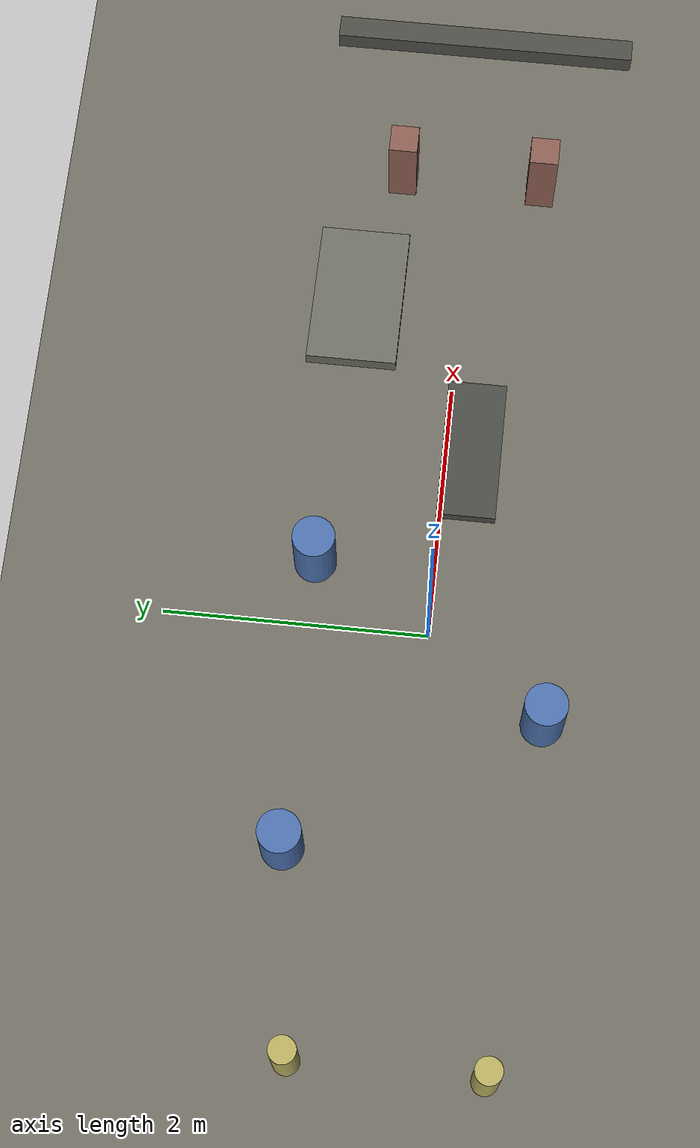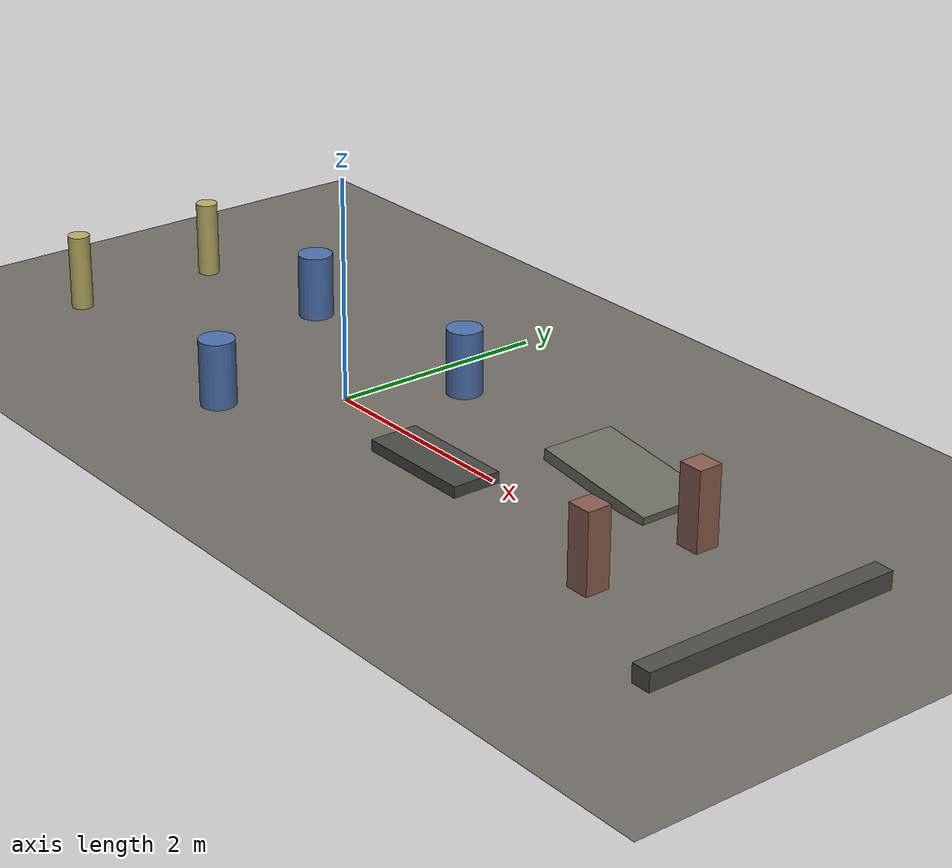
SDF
<?xml version="1.0"?>
<sdf version="1.9">
  <world name="brover_e5_obstacle_course">
    <plugin filename="gz-sim-physics-system" name="gz::sim::systems::Physics"/>
    <plugin filename="gz-sim-user-commands-system" name="gz::sim::systems::UserCommands"/>
    <plugin filename="gz-sim-scene-broadcaster-system" name="gz::sim::systems::SceneBroadcaster"/>
    <plugin filename="gz-sim-sensors-system" name="gz::sim::systems::Sensors">
      <render_engine>ogre2</render_engine>
    </plugin>

    <gravity>0 0 -9.81</gravity>
    <atmosphere type="adiabatic"/>
    <scene>
      <ambient>0.33 0.33 0.33 1</ambient>
      <background>0.66 0.70 0.74 1</background>
      <shadows>true</shadows>
    </scene>

    <light name="sun" type="directional">
      <cast_shadows>true</cast_shadows>
      <pose>0 0 10 0 0 0</pose>
      <diffuse>0.94 0.92 0.86 1</diffuse>
      <specular>0.10 0.10 0.10 1</specular>
      <direction>-0.35 0.35 -0.86</direction>
    </light>

    <model name="ground_plane">
      <static>true</static>
      <link name="link">
        <collision name="collision">
          <geometry>
            <plane>
              <normal>0 0 1</normal>
              <size>16 10</size>
            </plane>
          </geometry>
          <surface>
            <friction>
              <ode>
                <mu>1.2</mu>
                <mu2>1.2</mu2>
              </ode>
            </friction>
          </surface>
        </collision>
        <visual name="visual">
          <geometry>
            <plane>
              <normal>0 0 1</normal>
              <size>16 10</size>
            </plane>
          </geometry>
          <material>
            <ambient>0.44 0.43 0.39 1</ambient>
            <diffuse>0.44 0.43 0.39 1</diffuse>
            <specular>0.02 0.02 0.02 1</specular>
          </material>
        </visual>
      </link>
    </model>

    <model name="start_gate_left">
      <static>true</static>
      <pose>-3.2 0.7 0.35 0 0 0</pose>
      <link name="link">
        <collision name="collision"><geometry><cylinder><radius>0.10</radius><length>0.70</length></cylinder></geometry></collision>
        <visual name="visual">
          <geometry><cylinder><radius>0.10</radius><length>0.70</length></cylinder></geometry>
          <material><diffuse>0.72 0.68 0.38 1</diffuse></material>
        </visual>
      </link>
    </model>

    <model name="start_gate_right">
      <static>true</static>
      <pose>-3.2 -0.7 0.35 0 0 0</pose>
      <link name="link">
        <collision name="collision"><geometry><cylinder><radius>0.10</radius><length>0.70</length></cylinder></geometry></collision>
        <visual name="visual">
          <geometry><cylinder><radius>0.10</radius><length>0.70</length></cylinder></geometry>
          <material><diffuse>0.72 0.68 0.38 1</diffuse></material>
        </visual>
      </link>
    </model>

    <model name="slalom_post_1">
      <static>true</static>
      <pose>-1.7 0.9 0.30 0 0 0</pose>
      <link name="link">
        <collision name="collision"><geometry><cylinder><radius>0.16</radius><length>0.60</length></cylinder></geometry></collision>
        <visual name="visual">
          <geometry><cylinder><radius>0.16</radius><length>0.60</length></cylinder></geometry>
          <material><diffuse>0.30 0.44 0.68 1</diffuse></material>
        </visual>
      </link>
    </model>

    <model name="slalom_post_2">
      <static>true</static>
      <pose>-0.6 -0.9 0.30 0 0 0</pose>
      <link name="link">
        <collision name="collision"><geometry><cylinder><radius>0.16</radius><length>0.60</length></cylinder></geometry></collision>
        <visual name="visual">
          <geometry><cylinder><radius>0.16</radius><length>0.60</length></cylinder></geometry>
          <material><diffuse>0.30 0.44 0.68 1</diffuse></material>
        </visual>
      </link>
    </model>

    <model name="slalom_post_3">
      <static>true</static>
      <pose>0.5 0.9 0.30 0 0 0</pose>
      <link name="link">
        <collision name="collision"><geometry><cylinder><radius>0.16</radius><length>0.60</length></cylinder></geometry></collision>
        <visual name="visual">
          <geometry><cylinder><radius>0.16</radius><length>0.60</length></cylinder></geometry>
          <material><diffuse>0.30 0.44 0.68 1</diffuse></material>
        </visual>
      </link>
    </model>

    <model name="low_step">
      <static>true</static>
      <pose>1.5 -0.2 0.05 0 0 0</pose>
      <link name="link">
        <collision name="collision"><geometry><box><size>1.1 0.45 0.10</size></box></geometry></collision>
        <visual name="visual">
          <geometry><box><size>1.1 0.45 0.10</size></box></geometry>
          <material><diffuse>0.28 0.29 0.27 1</diffuse></material>
        </visual>
      </link>
    </model>

    <model name="short_ramp">
      <static>true</static>
      <pose>2.7 0.8 0.08 0 0.12 0</pose>
      <link name="link">
        <collision name="collision"><geometry><box><size>1.2 0.7 0.10</size></box></geometry></collision>
        <visual name="visual">
          <geometry><box><size>1.2 0.7 0.10</size></box></geometry>
          <material><diffuse>0.42 0.43 0.38 1</diffuse></material>
        </visual>
      </link>
    </model>

    <model name="narrow_gate_left">
      <static>true</static>
      <pose>3.8 0.55 0.35 0 0 0</pose>
      <link name="link">
        <collision name="collision"><geometry><box><size>0.22 0.22 0.70</size></box></geometry></collision>
        <visual name="visual">
          <geometry><box><size>0.22 0.22 0.70</size></box></geometry>
          <material><diffuse>0.55 0.37 0.32 1</diffuse></material>
        </visual>
      </link>
    </model>

    <model name="narrow_gate_right">
      <static>true</static>
      <pose>3.8 -0.55 0.35 0 0 0</pose>
      <link name="link">
        <collision name="collision"><geometry><box><size>0.22 0.22 0.70</size></box></geometry></collision>
        <visual name="visual">
          <geometry><box><size>0.22 0.22 0.70</size></box></geometry>
          <material><diffuse>0.55 0.37 0.32 1</diffuse></material>
        </visual>
      </link>
    </model>

    <model name="finish_barrier">
      <static>true</static>
      <pose>5.1 0 0.08 0 0 0</pose>
      <link name="link">
        <collision name="collision"><geometry><box><size>0.18 2.4 0.16</size></box></geometry></collision>
        <visual name="visual">
          <geometry><box><size>0.18 2.4 0.16</size></box></geometry>
          <material><diffuse>0.30 0.30 0.28 1</diffuse></material>
        </visual>
      </link>
    </model>
  </world>
</sdf>
